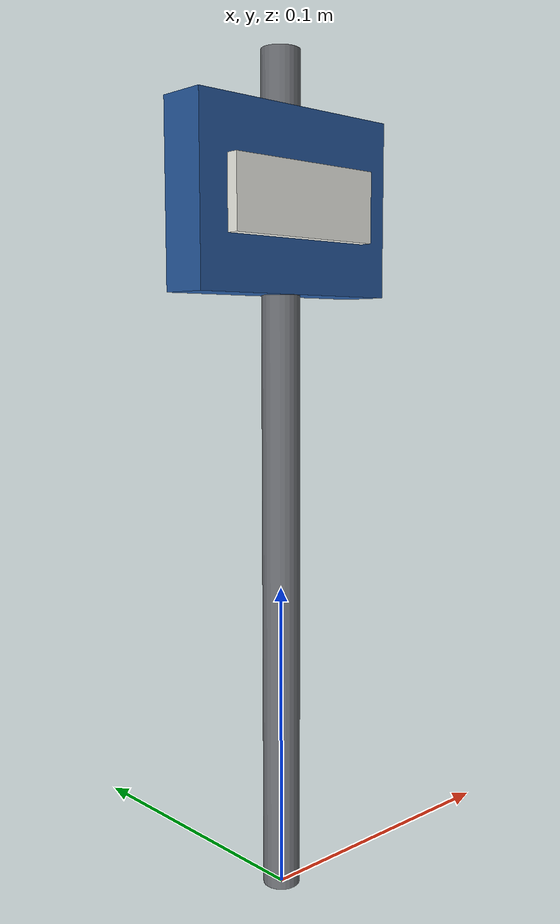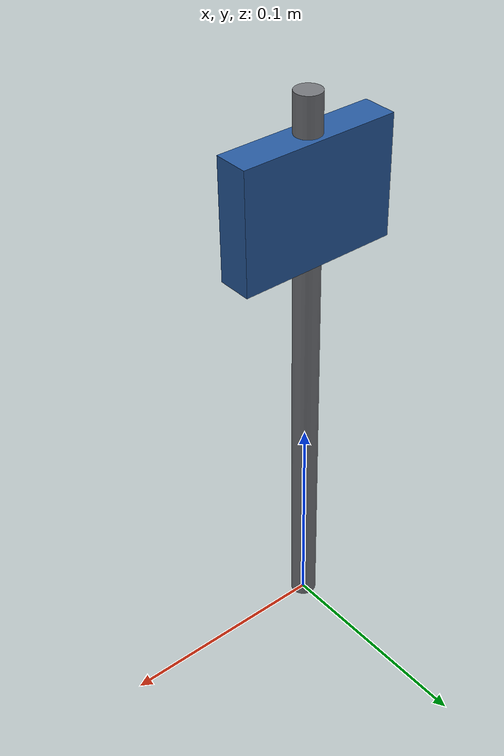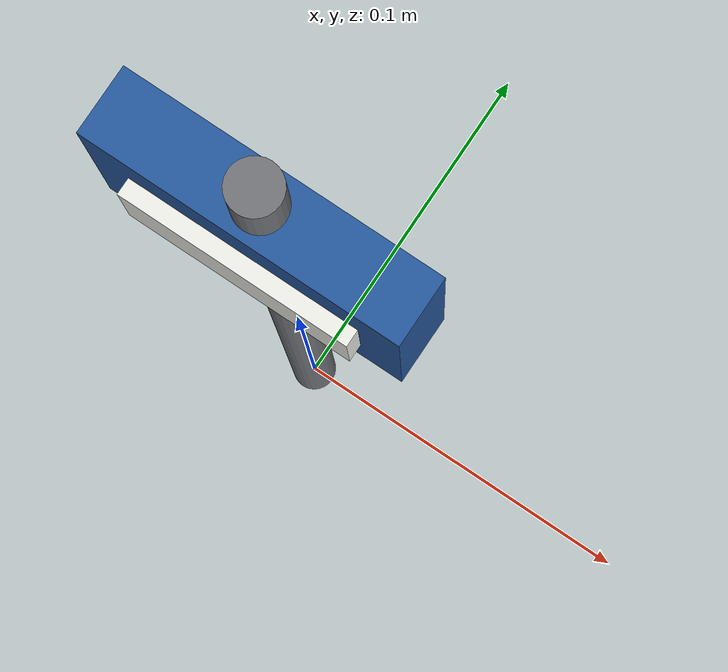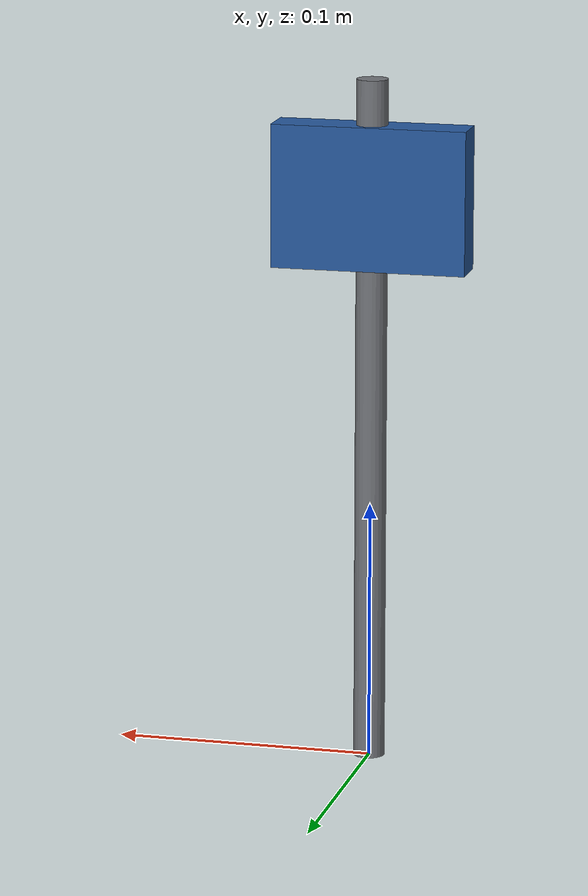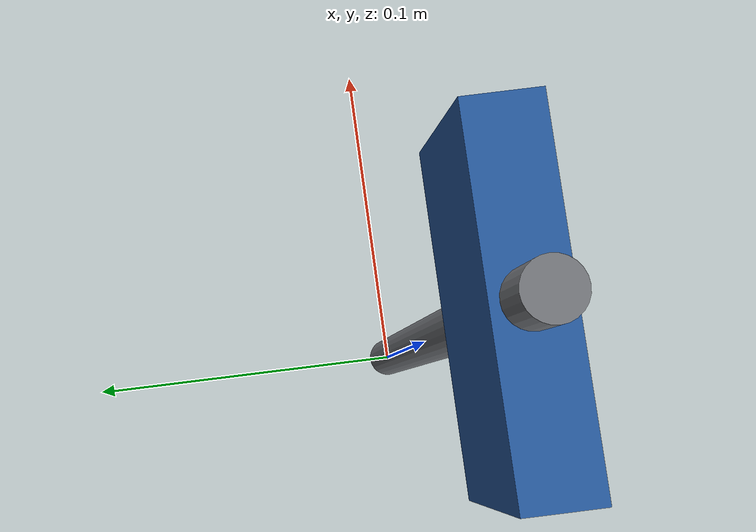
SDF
<?xml version="1.0"?>
<sdf version="1.7">
  <model name="sign">
    <static>true</static>
    <link name="link">
<visual name="post"><pose>0 0 0.1325 0 0 0</pose><geometry><cylinder><radius>0.0060</radius><length>0.2650</length></cylinder></geometry><material><ambient>0.45 0.46 0.48 1</ambient><diffuse>0.45 0.46 0.48 1</diffuse></material></visual>
      <collision name="post_c_c"><pose>0 0 0.1325 0 0 0</pose><geometry><cylinder><radius>0.0060</radius><length>0.2650</length></cylinder></geometry></collision>
      <visual name="board"><pose>0 0 0.2200 0 0 0</pose><geometry><box><size>0.0750 0.0160 0.055</size></box></geometry><material><ambient>0.15 0.35 0.62 1</ambient><diffuse>0.15 0.35 0.62 1</diffuse></material></visual>
      <collision name="board_c_c"><pose>0 0 0.2200 0 0 0</pose><geometry><box><size>0.0750 0.0160 0.055</size></box></geometry></collision>
      <visual name="plate"><pose>0 -0.010 0.2200 0 0 0</pose><geometry><box><size>0.055 0.004 0.022</size></box></geometry><material><ambient>0.95 0.95 0.92 1</ambient><diffuse>0.95 0.95 0.92 1</diffuse></material></visual>
    </link>
  </model>
</sdf>
